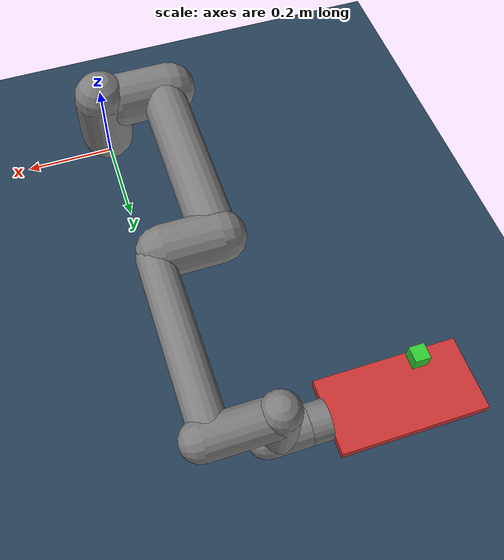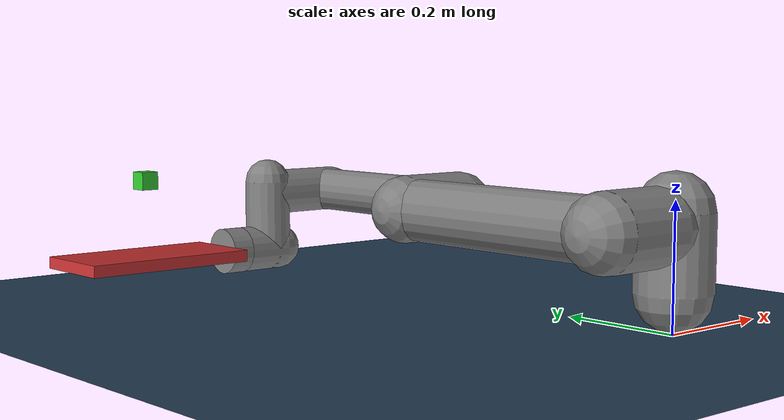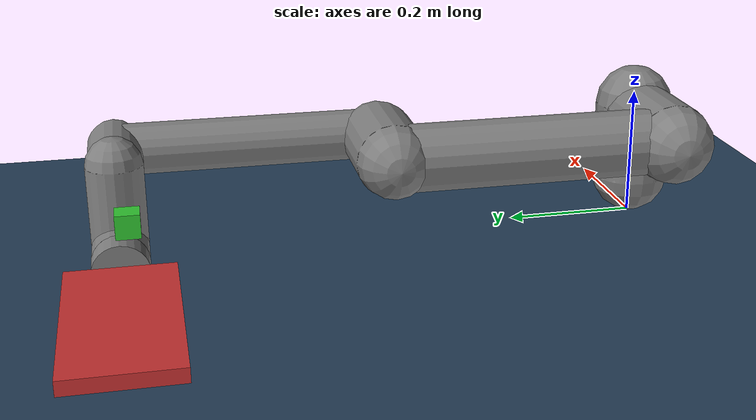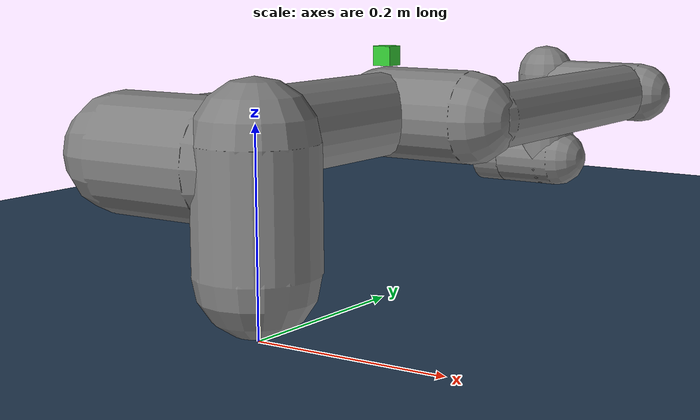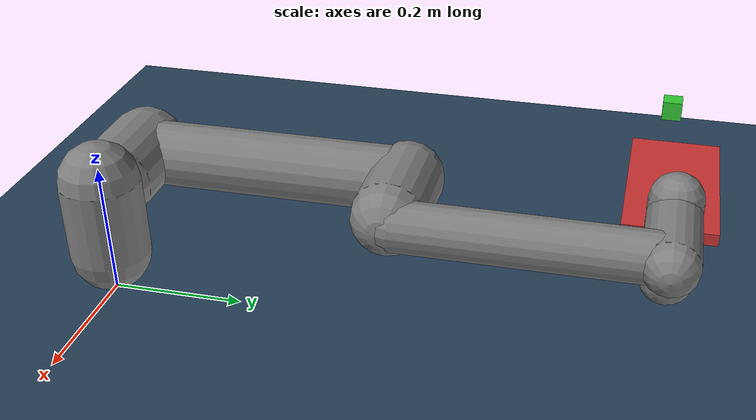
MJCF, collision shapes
<mujoco model="ur5e scene">
  <include file="ur5e_with_gripper_cube_tilt.xml"/>

  <statistic center="0.3 0 0.4" extent="0.8"/>

  <visual>
    <headlight diffuse="0.6 0.6 0.6" ambient="0.1 0.1 0.1" specular="0 0 0"/>
    <rgba haze="0.15 0.25 0.35 1"/>
    <global azimuth="120" elevation="-20"/>
  </visual>

  <asset>
    <texture type="skybox" builtin="gradient" rgb1="0.3 0.5 0.7" rgb2="0 0 0" width="512" height="3072"/>
    <!-- Define multiple floor textures -->
    <texture type="2d" name="groundplane1" builtin="gradient" mark="edge" rgb1="0.2 0.3 0.4" rgb2="0.1 0.2 0.3"
      markrgb="0.8 0.8 0.8" width="300" height="300"/>
    <texture type="2d" name="groundplane2" builtin="gradient" mark="cross" rgb1="0.4 0.2 0.3" rgb2="0.3 0.1 0.2"
      markrgb="0.8 0.8 0.8" width="300" height="300"/>
    <texture type="2d" name="groundplane3" builtin="gradient" mark="random" rgb1="0.3 0.4 0.2" rgb2="0.2 0.3 0.1"
      markrgb="0.8 0.8 0.8" width="300" height="300"/>
    <texture type="2d" name="groundplane4" builtin="checker" mark="edge" rgb1="0.2 0.3 0.4" rgb2="0.1 0.2 0.3"
      markrgb="0.8 0.8 0.8" width="300" height="300"/>
    <texture type="2d" name="groundplane5" builtin="checker" mark="cross" rgb1="0.4 0.2 0.3" rgb2="0.3 0.1 0.2"
      markrgb="0.8 0.8 0.8" width="300" height="300"/>
    <texture type="2d" name="groundplane6" builtin="checker" mark="random" rgb1="0.3 0.4 0.2" rgb2="0.2 0.3 0.1"
      markrgb="0.8 0.8 0.8" width="300" height="300"/>
    <texture type="2d" name="groundplane7" builtin="flat" mark="edge" rgb1="0.2 0.3 0.4" rgb2="0.1 0.2 0.3"
      markrgb="0.8 0.8 0.8" width="300" height="300"/>
    <texture type="2d" name="groundplane8" builtin="flat" mark="cross" rgb1="0.4 0.2 0.3" rgb2="0.3 0.1 0.2"
      markrgb="0.8 0.8 0.8" width="300" height="300"/>
    <texture type="2d" name="groundplane9" builtin="flat" mark="random" rgb1="0.3 0.4 0.2" rgb2="0.2 0.3 0.1"
      markrgb="0.8 0.8 0.8" width="300" height="300"/>

    <!-- Define materials for each texture -->
    <material name="groundplane1" texture="groundplane1" texuniform="true" texrepeat="5 5" reflectance="0.2"/>
    <material name="groundplane2" texture="groundplane2" texuniform="true" texrepeat="5 5" reflectance="0.2"/>
    <material name="groundplane3" texture="groundplane3" texuniform="true" texrepeat="5 5" reflectance="0.2"/>
    <material name="groundplane4" texture="groundplane4" texuniform="true" texrepeat="5 5" reflectance="0.2"/>
    <material name="groundplane5" texture="groundplane5" texuniform="true" texrepeat="5 5" reflectance="0.2"/>
    <material name="groundplane6" texture="groundplane6" texuniform="true" texrepeat="5 5" reflectance="0.2"/>
    <material name="groundplane7" texture="groundplane7" texuniform="true" texrepeat="5 5" reflectance="0.2"/>
    <material name="groundplane8" texture="groundplane8" texuniform="true" texrepeat="5 5" reflectance="0.2"/>
    <material name="groundplane9" texture="groundplane9" texuniform="true" texrepeat="5 5" reflectance="0.2"/>
  </asset>

  <worldbody>
    <light pos="0 0 1.5" dir="0 0 -1" directional="true"/>
    <geom name="floor" size="0 0 0.05" type="plane" material="groundplane1"/>
  </worldbody>
</mujoco>

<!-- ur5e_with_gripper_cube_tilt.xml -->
<mujoco model="ur5e">
  <compiler angle="radian" meshdir="assets" autolimits="true"/>

  <option integrator="implicitfast" gravity="0 0 -9.81"/>

  <default>
    <default class="ur5e">
      <material specular="0.5" shininess="0.25"/>
      <joint axis="0 1 0" range="-6.28319 6.28319" armature="0.1"/>
      <general gaintype="fixed" biastype="affine" ctrlrange="-6.2831 6.2831" gainprm="2000" biasprm="0 -2000 -400"
        forcerange="-150 150"/>
      <default class="size3">
        <default class="size3_limited">
          <joint range="-3.1415 3.1415"/>
          <general ctrlrange="-3.1415 3.1415"/>
        </default>
      </default>
      <default class="size1">
        <general gainprm="500" biasprm="0 -500 -100" forcerange="-28 28"/>
      </default>
      <default class="visual">
        <geom type="mesh" contype="0" conaffinity="0" group="2"/>
      </default>
      <default class="collision">
        <geom type="capsule" group="3"/>
        <default class="eef_collision">
          <geom type="cylinder"/>
        </default>
      </default>
      <site size="0.001" rgba="0.5 0.5 0.5 0.3" group="4"/>
    </default>
  </default>

  <asset>
    <material class="ur5e" name="black" rgba="0.033 0.033 0.033 1"/>
    <material class="ur5e" name="jointgray" rgba="0.278 0.278 0.278 1"/>
    <material class="ur5e" name="linkgray" rgba="0.82 0.82 0.82 1"/>
    <material class="ur5e" name="urblue" rgba="0.49 0.678 0.8 1"/>

    <mesh file="base_0.obj"/>
    <mesh file="base_1.obj"/>
    <mesh file="shoulder_0.obj"/>
    <mesh file="shoulder_1.obj"/>
    <mesh file="shoulder_2.obj"/>
    <mesh file="upperarm_0.obj"/>
    <mesh file="upperarm_1.obj"/>
    <mesh file="upperarm_2.obj"/>
    <mesh file="upperarm_3.obj"/>
    <mesh file="forearm_0.obj"/>
    <mesh file="forearm_1.obj"/>
    <mesh file="forearm_2.obj"/>
    <mesh file="forearm_3.obj"/>
    <mesh file="wrist1_0.obj"/>
    <mesh file="wrist1_1.obj"/>
    <mesh file="wrist1_2.obj"/>
    <mesh file="wrist2_0.obj"/>
    <mesh file="wrist2_1.obj"/>
    <mesh file="wrist2_2.obj"/>
    <mesh file="wrist3.obj"/>
  </asset>

  <contact>
    <pair geom1="sliding_cube" geom2="panel" friction="0.2 0.5 0.001"/>
  </contact>

  <worldbody>
    <!-- Add camera definition -->
    <camera name="top_camera" mode="fixed" pos="0 0 2.0" euler="0 0 0"  fovy="45"/>
    <camera name="side_camera" mode="fixed" pos="1.5 0 0.8" euler="0 -30 0" fovy="45"/>
    <camera name="front_camera" mode="fixed" pos="0 -2.0 1.2" euler="45 0 0" fovy="45"/>
    <light name="spotlight" mode="targetbodycom" target="wrist_2_link" pos="0 -1 2"/>
    <body name="base" quat="1 0 0 1" childclass="ur5e">
      <inertial mass="4.0" pos="0 0 0" diaginertia="0.00443333156 0.00443333156 0.0072"/>
      <geom mesh="base_0" material="black" class="visual"/>
      <geom mesh="base_1" material="jointgray" class="visual"/>
      <body name="shoulder_link" pos="0 0 0.163">
        <inertial mass="3.7" pos="0 0 0" diaginertia="0.0102675 0.0102675 0.00666"/>
        <joint name="shoulder_pan_joint" class="size3" axis="0 0 1"/>
        <geom mesh="shoulder_0" material="urblue" class="visual"/>
        <geom mesh="shoulder_1" material="black" class="visual"/>
        <geom mesh="shoulder_2" material="jointgray" class="visual"/>
        <geom class="collision" size="0.06 0.06" pos="0 0 -0.04"/>
        <body name="upper_arm_link" pos="0 0.138 0" quat="1 0 1 0">
          <inertial mass="8.393" pos="0 0 0.2125" diaginertia="0.133886 0.133886 0.0151074"/>
          <joint name="shoulder_lift_joint" class="size3"/>
          <geom mesh="upperarm_0" material="linkgray" class="visual"/>
          <geom mesh="upperarm_1" material="black" class="visual"/>
          <geom mesh="upperarm_2" material="jointgray" class="visual"/>
          <geom mesh="upperarm_3" material="urblue" class="visual"/>
          <geom class="collision" pos="0 -0.04 0" quat="1 1 0 0" size="0.06 0.06"/>
          <geom class="collision" size="0.05 0.2" pos="0 0 0.2"/>
          <body name="forearm_link" pos="0 -0.131 0.425">
            <inertial mass="2.275" pos="0 0 0.196" diaginertia="0.0311796 0.0311796 0.004095"/>
            <joint name="elbow_joint" class="size3_limited"/>
            <geom mesh="forearm_0" material="urblue" class="visual"/>
            <geom mesh="forearm_1" material="linkgray" class="visual"/>
            <geom mesh="forearm_2" material="black" class="visual"/>
            <geom mesh="forearm_3" material="jointgray" class="visual"/>
            <geom class="collision" pos="0 0.08 0" quat="1 1 0 0" size="0.055 0.06"/>
            <geom class="collision" size="0.038 0.19" pos="0 0 0.2"/>
            <body name="wrist_1_link" pos="0 0 0.392" quat="1 0 1 0">
              <inertial mass="1.219" pos="0 0.127 0" diaginertia="0.0025599 0.0025599 0.0021942"/>
              <joint name="wrist_1_joint" class="size1"/>
              <geom mesh="wrist1_0" material="black" class="visual"/>
              <geom mesh="wrist1_1" material="urblue" class="visual"/>
              <geom mesh="wrist1_2" material="jointgray" class="visual"/>
              <geom class="collision" pos="0 0.05 0" quat="1 1 0 0" size="0.04 0.07"/>
              <body name="wrist_2_link" pos="0 0.127 0">
                <inertial mass="1.219" pos="0 0 0.1" diaginertia="0.0025599 0.0025599 0.0021942"/>
                <joint name="wrist_2_joint" axis="0 0 1" class="size1"/>
                <geom mesh="wrist2_0" material="black" class="visual"/>
                <geom mesh="wrist2_1" material="urblue" class="visual"/>
                <geom mesh="wrist2_2" material="jointgray" class="visual"/>
                <geom class="collision" size="0.04 0.06" pos="0 0 0.04"/>
                <geom class="collision" pos="0 0.02 0.1" quat="1 1 0 0" size="0.04 0.04"/>
                <body name="wrist_3_link" pos="0 0 0.1">
                  <inertial mass="0.1889" pos="0 0.0771683 0" quat="1 0 0 1"
                    diaginertia="0.000132134 9.90863e-05 9.90863e-05"/>
                  <joint name="wrist_3_joint" class="size1"/>
                  <geom material="linkgray" mesh="wrist3" class="visual"/>
                  <geom class="eef_collision" pos="0 0.08 0" quat="1 1 0 0" size="0.04 0.02"/>
                  <site name="attachment_site" pos="0 0.1 0" quat="-1 1 0 0"/>
                  <body name="fixed_box" pos="0 0.25 0" quat="0 0 0 1">
                    <joint name="box_rotation" type="hinge" axis="0 1 0" limited="true" range="-0.1 0.1"/>
                    <geom name="panel" type="box" size="0.075 0.15 0.01" rgba="0.8 0.2 0.2 1"/> <!-- Box dimensions and color -->
                    <inertial mass="0.5" pos="0 0 0" diaginertia="0.001 0.001 0.001"/>
                  </body>
                </body>
              </body>
            </body>
          </body>
        </body>
      </body>
    </body>

    <!-- New Cube Body -->
    <body name="free_cube" pos="-0.4 0.8 0.2"> <!-- Slightly above the box -->
      <geom name="sliding_cube" type="box" size="0.015 0.015 0.015" rgba="0.2 0.8 0.2 1"/> <!-- Cube dimensions and color -->
      <joint type="free"/>
      <inertial mass="1" pos="0 0 0" quat="1 0 0 0" diaginertia="0.01 0.01 0.01"/>
    </body>

  </worldbody>

  <actuator>
    <general class="size3" name="shoulder_pan" joint="shoulder_pan_joint"/>
    <general class="size3" name="shoulder_lift" joint="shoulder_lift_joint"/>
    <general class="size3_limited" name="elbow" joint="elbow_joint"/>
    <general class="size1" name="wrist_1" joint="wrist_1_joint"/>
    <general class="size1" name="wrist_2" joint="wrist_2_joint"/>
    <general class="size1" name="wrist_3" joint="wrist_3_joint"/>
    <motor joint="box_rotation" name="box_rotation_motor" gear="1"/>
  </actuator>

  <keyframe>
    <key name="home" qpos="1.3500753657730578 -1.865456836594901 -2.0400916711745514 -2.3380169136860096 -0.26860617161064493 3.0982337160377313 0 0 0 1 0 0 0 0"
          ctrl="1.3500753657730578 -1.865456836594901 -2.0400916711745514 -2.3380169136860096 -0.26860617161064493 3.0982337160377313 0"/>
  </keyframe>
</mujoco>
